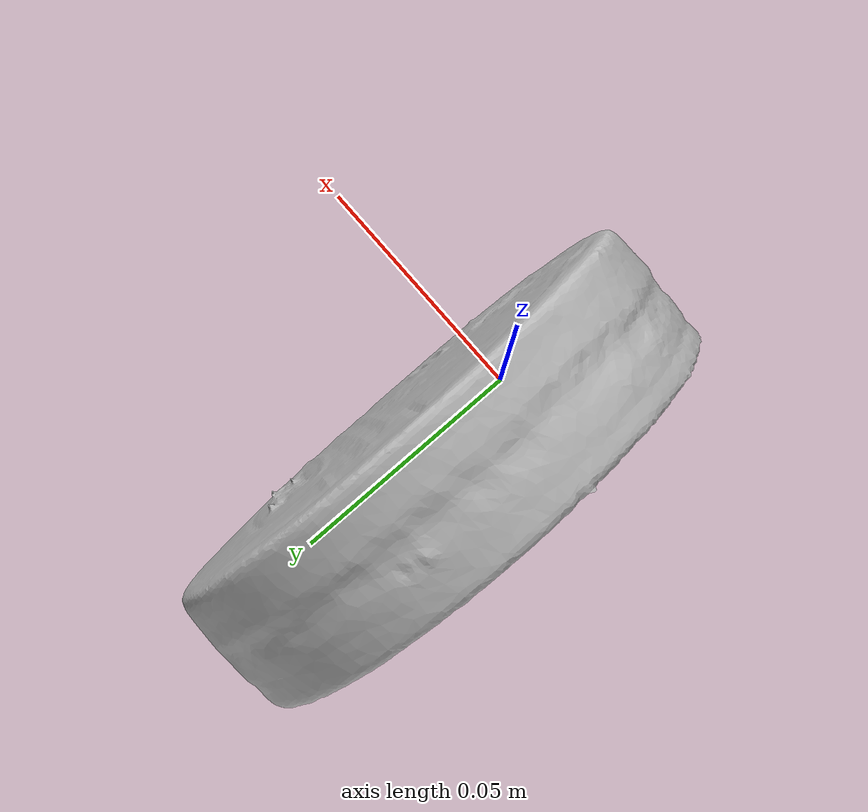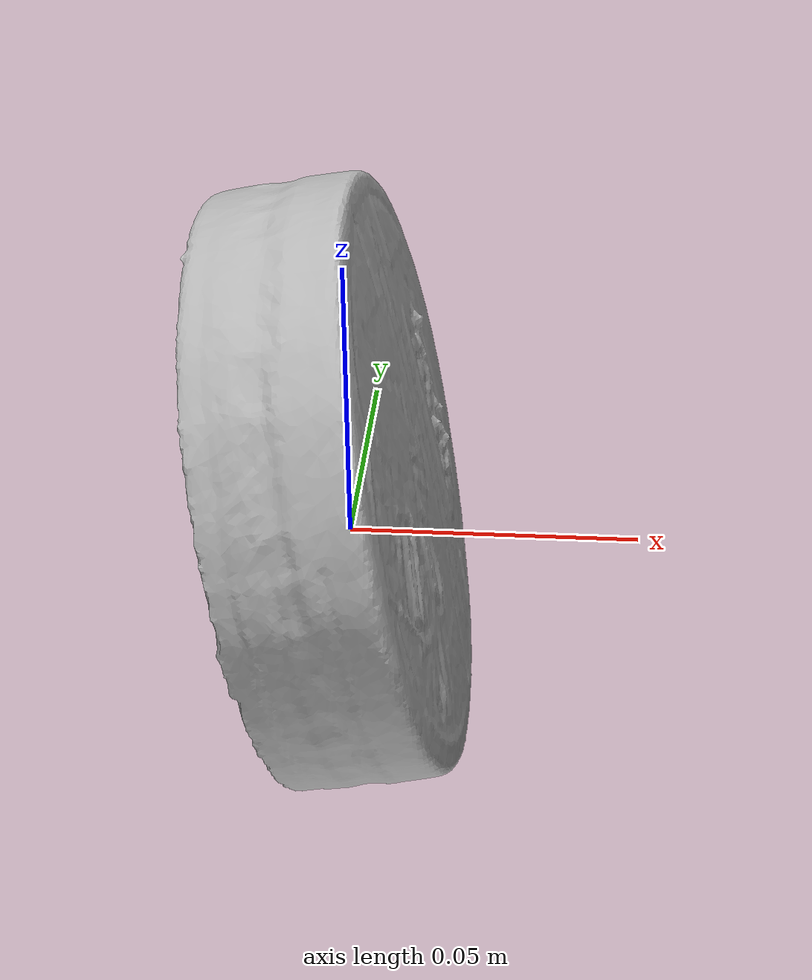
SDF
<?xml version='1.0'?>
<sdf version="1.4">
  <model name="SoftCheese">
    <static>false</static>
    <link name="link">
      <inertial>
        <pose>-0.003446876196049366 0.02074431659347415 -0.00345732572402762 -0.42833003260681324 0.19219711832205572 -3.1296640885625022</pose>
        <mass>0.029479929626665596</mass>
        <inertia>
          <ixx>4.5258414909664385e-05</ixx>
          <ixy>1.1214849715805774e-21</ixy>
          <ixz>1.757424682155233e-21</ixz>
          <iyy>2.4889367453667112e-05</iyy>
          <iyz>4.653419097591928e-21</iyz>
          <izz>2.4777695218210915e-05</izz>
        </inertia>
      </inertial>
      <collision name="collision">
        <geometry>
          <mesh>
            <!-- Use a downsampled mesh for collisions -->
            <uri>model:///SoftCheese/SoftCheese_250_collision.obj</uri>
	        </mesh>
        </geometry>
        <surface>
      </surface>
      </collision>
      <visual name="visual">
        <geometry>
          <mesh>
            <uri>model:///SoftCheese/SoftCheese_25k_tex.obj</uri>
	        </mesh>
        </geometry>
        <material>
          <script>
            <uri>model:///SoftCheese/SoftCheese.material</uri>
            <name>SoftCheese</name>
          </script>
        </material>
      </visual>
    </link>
  </model>
</sdf>
